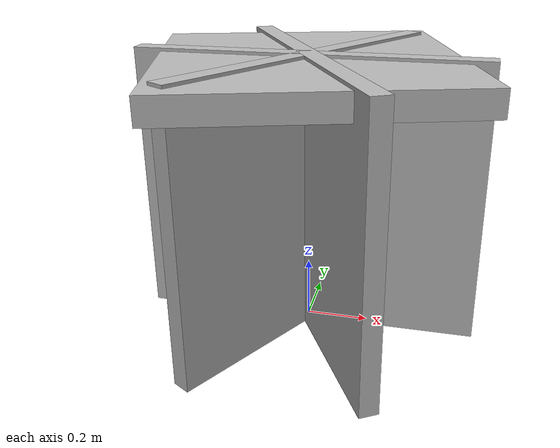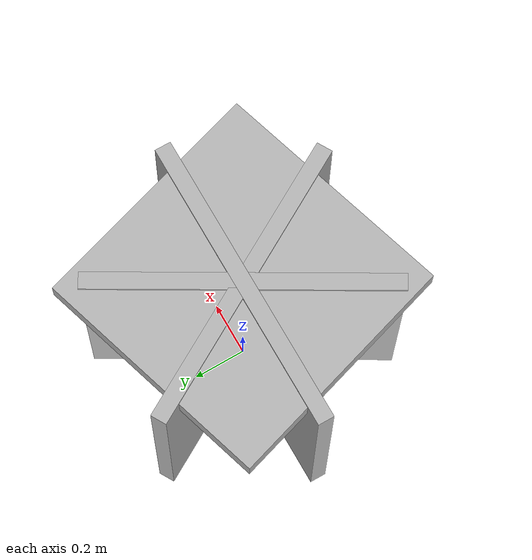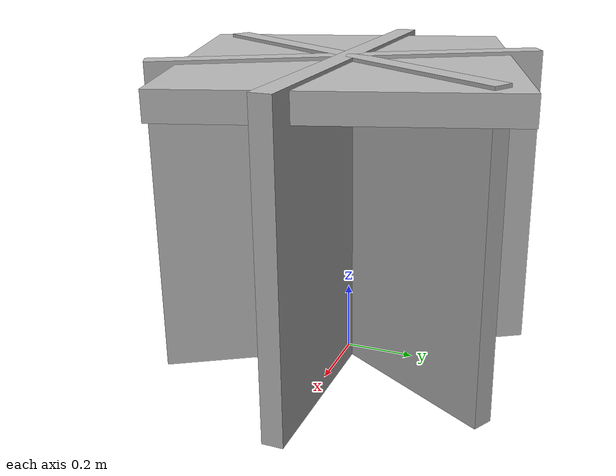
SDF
<?xml version="1.0" ?>
<sdf version="1.9">
  <model name="bush_small">
    <static>true</static>
    <link name="body">
      <visual name="cross_1">
        <pose>0 0 0.45 0 0 0</pose>
        <geometry><box><size>1.1 0.06 0.9</size></box></geometry>
        <material><double_sided>true</double_sided>
          <pbr><metal><albedo_map>model://bush_small/materials/textures/bush_albedo.png</albedo_map></metal></pbr>
        </material>
      </visual>
      <visual name="cross_2">
        <pose>0 0 0.45 0 0 1.0472</pose>
        <geometry><box><size>1.1 0.06 0.9</size></box></geometry>
        <material><double_sided>true</double_sided>
          <pbr><metal><albedo_map>model://bush_small/materials/textures/bush_albedo.png</albedo_map></metal></pbr>
        </material>
      </visual>
      <visual name="cross_3">
        <pose>0 0 0.45 0 0 2.0944</pose>
        <geometry><box><size>1.1 0.06 0.9</size></box></geometry>
        <material><double_sided>true</double_sided>
          <pbr><metal><albedo_map>model://bush_small/materials/textures/bush_albedo.png</albedo_map></metal></pbr>
        </material>
      </visual>
      <visual name="top_cap">
        <pose>0 0 0.85 0 0 0.3</pose>
        <geometry><box><size>0.9 0.9 0.08</size></box></geometry>
        <material><double_sided>true</double_sided>
          <pbr><metal><albedo_map>model://bush_small/materials/textures/bush_albedo.png</albedo_map></metal></pbr>
        </material>
      </visual>
      <collision name="col">
        <pose>0 0 0.4 0 0 0</pose>
        <geometry><cylinder><radius>0.45</radius><length>0.8</length></cylinder></geometry>
      </collision>
    </link>
  </model>
</sdf>
